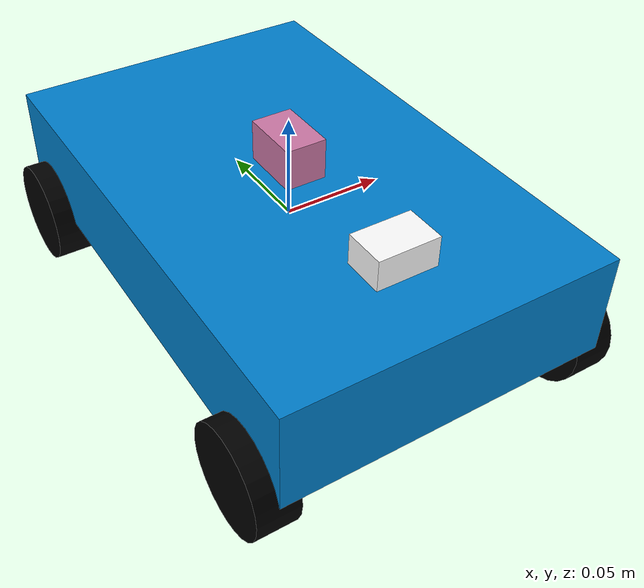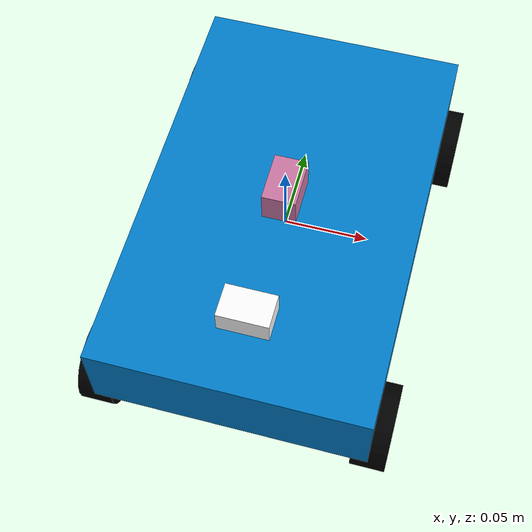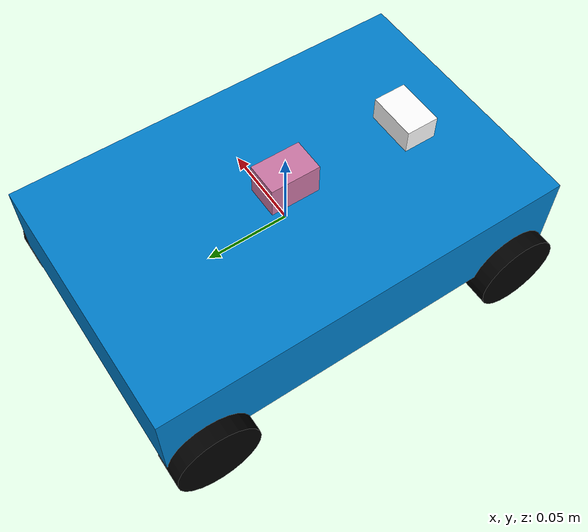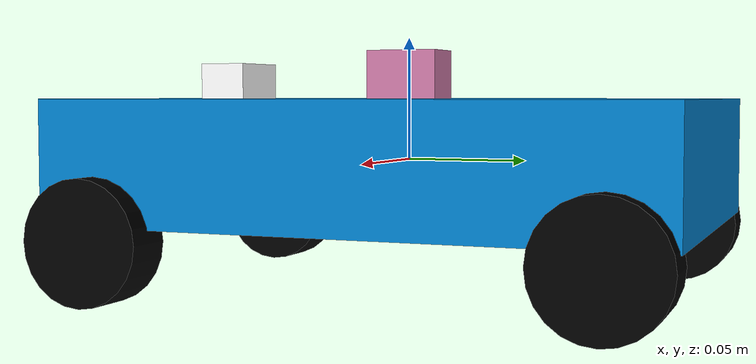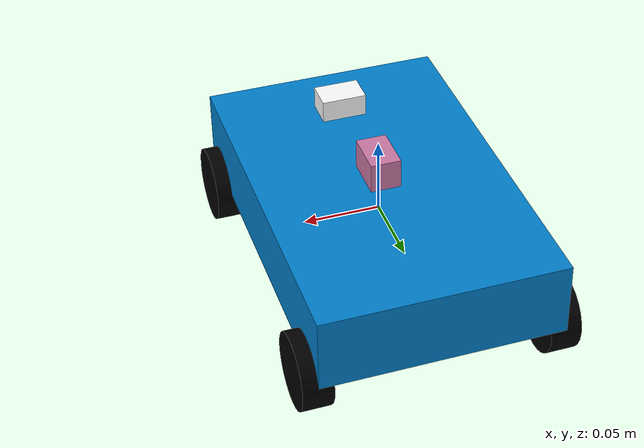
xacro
<?xml version="1.0"?>
<robot name="smartcar">
	<link name="base_link">
		<visual>
			<geometry>
				<box size="0.25 .16 .05" />
			</geometry>
			<origin rpy="0 0 1.57075" xyz="0 0 0" />
			<material name="blue">
				<color rgba="0 .5 .8 1" />
			</material>
		</visual>
		<collision>
			<geometry>
				<box size="0.25 .16 .05" />
			</geometry>
		</collision>
		<inertial>
			<mass value="1.0" />
			<inertia ixx="0.0054" iyy="0.0073" izz="0.0023" ixy="0" ixz="0" iyz="0" />
		</inertial>
	</link>
	<gazebo reference="base_link">
		<material>
			Gazebo/Blue
		</material>
	</gazebo>
	<link name="right_front_wheel">
		<visual>
			<geometry>
				<cylinder length=".02" radius="0.025" />
			</geometry>
			<material name="black">
				<color rgba="0 0 0 1" />
			</material>
		</visual>
		<collision>
			<geometry>
				<cylinder length=".02" radius="0.025" />
			</geometry>
		</collision>
		<inertial>
			<mass value="0.1" />
			<inertia ixx="0.0000189" iyy=".0000189583" izz="0.00003125" ixy="0" ixz="0" iyz="0" />
		</inertial>
	</link>
	<joint name="right_front_wheel_joint" type="continuous">
		<axis xyz="0 0 1" />
		<parent link="base_link" />
		<child link="right_front_wheel" />
		<origin rpy="0 1.57075 0" xyz="0.08 0.1 -0.03" />
		<limit effort="100" velocity="100" />
		<joint_properties damping="0.0" friction="0.0" />
	</joint>
	<gazebo reference="right_front_wheel">
		<material>
			Gazebo/Black
		</material>
	</gazebo>
	<link name="right_back_wheel">
		<visual>
			<geometry>
				<cylinder length=".02" radius="0.025" />
			</geometry>
			<material name="black">
				<color rgba="0 0 0 1" />
			</material>
		</visual>
		<collision>
			<geometry>
				<cylinder length=".02" radius="0.025" />
			</geometry>
		</collision>
		<inertial>
			<mass value="0.1" />
			<inertia ixx="0.0000189" iyy=".0000189583" izz="0.00003125" ixy="0" ixz="0" iyz="0" />
		</inertial>
	</link>
	<joint name="right_back_wheel_joint" type="continuous">
		<axis xyz="0 0 1" />
		<parent link="base_link" />
		<child link="right_back_wheel" />
		<origin rpy="0 1.57075 0" xyz="0.08 -0.1 -0.03" />
		<limit effort="100" velocity="100" />
		<joint_properties damping="0.0" friction="0.0" />
	</joint>
	<gazebo reference="right_back_wheel">
		<material>
			Gazebo/Black
		</material>
	</gazebo>
	<link name="left_front_wheel">
		<visual>
			<geometry>
				<cylinder length=".02" radius="0.025" />
			</geometry>
			<material name="black">
				<color rgba="0 0 0 1" />
			</material>
		</visual>
		<collision>
			<geometry>
				<cylinder length=".02" radius="0.025" />
			</geometry>
		</collision>
		<inertial>
			<mass value="0.1" />
			<inertia ixx="0.0000189" iyy=".0000189583" izz="0.00003125" ixy="0" ixz="0" iyz="0" />
		</inertial>
	</link>
	<joint name="left_front_wheel_joint" type="continuous">
		<axis xyz="0 0 1" />
		<parent link="base_link" />
		<child link="left_front_wheel" />
		<origin rpy="0 1.57075 0" xyz="-0.08 0.1 -0.03" />
		<limit effort="100" velocity="100" />
		<joint_properties damping="0.0" friction="0.0" />
	</joint>
	<gazebo reference="left_front_wheel">
		<material>
			Gazebo/Black
		</material>
	</gazebo>
	<link name="left_back_wheel">
		<visual>
			<geometry>
				<cylinder length=".02" radius="0.025" />
			</geometry>
			<material name="black">
				<color rgba="0 0 0 1" />
			</material>
		</visual>
		<collision>
			<geometry>
				<cylinder length=".02" radius="0.025" />
			</geometry>
		</collision>
		<inertial>
			<mass value="0.1" />
			<inertia ixx="0.0000189" iyy=".0000189583" izz="0.00003125" ixy="0" ixz="0" iyz="0" />
		</inertial>
	</link>
	<joint name="left_back_wheel_joint" type="continuous">
		<axis xyz="0 0 1" />
		<parent link="base_link" />
		<child link="left_back_wheel" />
		<origin rpy="0 1.57075 0" xyz="-0.08 -0.1 -0.03" />
		<limit effort="100" velocity="100" />
		<joint_properties damping="0.0" friction="0.0" />
	</joint>
	<gazebo reference="left_back_wheel">
		<material>
			Gazebo/Black
		</material>
	</gazebo>
	<link name="head">
		<visual>
			<geometry>
				<box size=".02 .03 .03" />
			</geometry>
			<material name="white">
				<color rgba="1 1 1 1" />
			</material>
		</visual>
		<collision>
			<geometry>
				<box size="0.02 .03 .03" />
			</geometry>
		</collision>
		<inertial>
			<mass value="0.1" />
			<inertia ixx="0.000010833" iyy="0.000010833" izz="0.000015" ixy="0" ixz="0" iyz="0" />
		</inertial>
	</link>
	<joint name="tobox" type="fixed">
		<parent link="base_link" />
		<child link="head" />
		<origin xyz="0 -0.08 0.025" rpy="0 0 1.57" />
	</joint>
	<gazebo reference="tobox">
		<material>
			Gazebo/White
		</material>
	</gazebo>
	<gazebo>
		<plugin name="differential_drive_controller" filename="libgazebo_ros_diff_drive.so">
			<leftJoint>
				left_front_wheel_joint
			</leftJoint>
			<rightJoint>
				right_front_wheel_joint
			</rightJoint>
			<robotBaseFrame>
				base_link
			</robotBaseFrame>
			<wheelSeparation>
				0.14
			</wheelSeparation>
			<wheelDiameter>
				0.05
			</wheelDiameter>
			<legacyMode>
				true
			</legacyMode>
			<publishWheelJointState>
				true
			</publishWheelJointState>
		</plugin>
		<plugin name="differential_drive_controller" filename="libgazebo_ros_diff_drive.so">
			<leftJoint>
				left_back_wheel_joint
			</leftJoint>
			<rightJoint>
				right_back_wheel_joint
			</rightJoint>
			<robotBaseFrame>
				base_link
			</robotBaseFrame>
			<wheelSeparation>
				0.14
			</wheelSeparation>
			<wheelDiameter>
				0.05
			</wheelDiameter>
			<legacyMode>
				true
			</legacyMode>
			<publishWheelJointState>
				true
			</publishWheelJointState>
			<publishOdom>
				true
			</publishOdom>
			<robotBaseFrame>
				base_link
			</robotBaseFrame>
		</plugin>
	</gazebo>

	<joint name="laser_joint" type="fixed">
		<axis xyz="0 1 0" />
		<origin xyz="0 0 0.030" rpy="0 0 0" />
		<parent link="base_link" />
		<child link="laser_link" />
	</joint>
	<link name="laser_link">
		<collision>
			<origin xyz="0 0 0" rpy="0 0 0" />
			<geometry>
				<box size="0.02 .03 .03" />
			</geometry>
		</collision>
		<visual>
			<origin xyz="0 0 0" rpy="0 0 0" />
			<geometry>
				<box size="0.02 .03 .03" />
			</geometry>
		</visual>
		<inertial>
			<mass value="0.1" />
			<inertia ixx="0.000010833" iyy="0.000010833" izz="0.000015" ixy="0" ixz="0" iyz="0" />
		</inertial>
	</link>
	<gazebo reference="laser_link">
		<sensor type="ray" name="head_velodyne_sensor">
			<pose>
				0 0 0 0 0 0
			</pose>
			<visualize>
				true
			</visualize>
			<update_rate>
				40
			</update_rate>
			<ray>
				<scan>
					<horizontal>
						<samples>
							40
						</samples>
						<resolution>
							1
						</resolution>
						<min_angle>
							0
						</min_angle>
						<max_angle>
							1.57
						</max_angle>
					</horizontal>
					<vertical>
						<samples>
							40
						</samples>
						<resolution>
							1
						</resolution>
						<min_angle>
							-${15.0*3.14125/180.0}
						</min_angle>
						<max_angle>
							${15.0*3.14125/180.0}
						</max_angle>
					</vertical>
				</scan>
				<range>
					<min>
						0.10
					</min>
					<max>
						60.0
					</max>
					<resolution>
						0.02
					</resolution>
				</range>
			</ray>
			<plugin name="gazebo_ros_head_velodyne_controller" filename="libgazebo_ros_velodyne_laser.so">
				<frameName>
					laser_link
				</frameName>
				<topicName>
					velodyne_pointcloud
				</topicName>
			</plugin>
		</sensor>
	</gazebo>

</robot>
